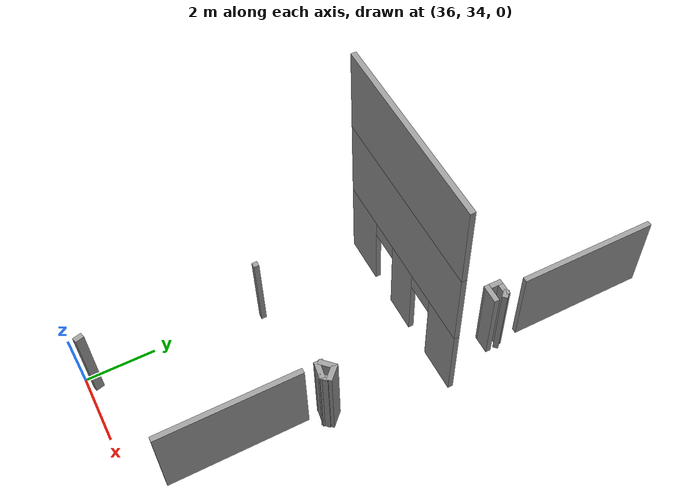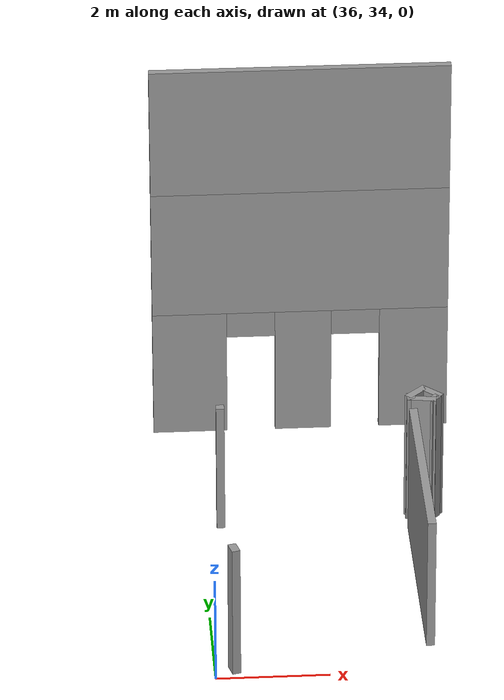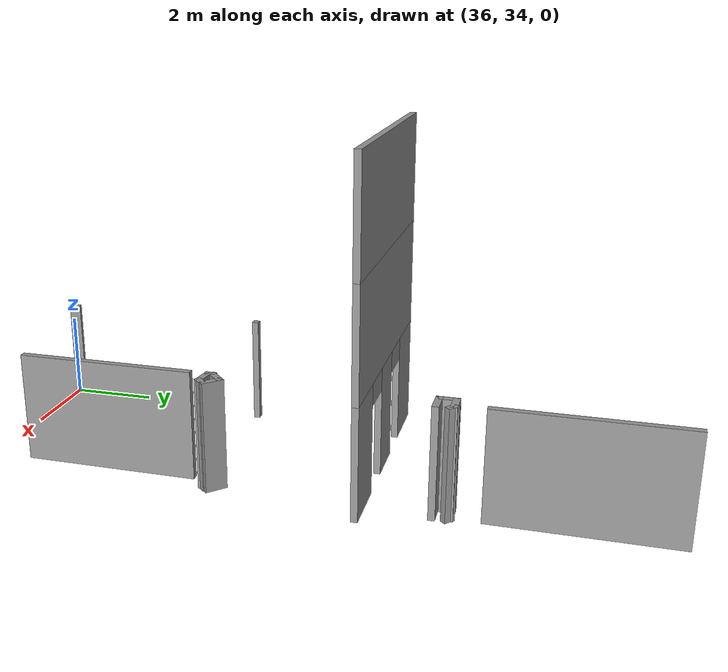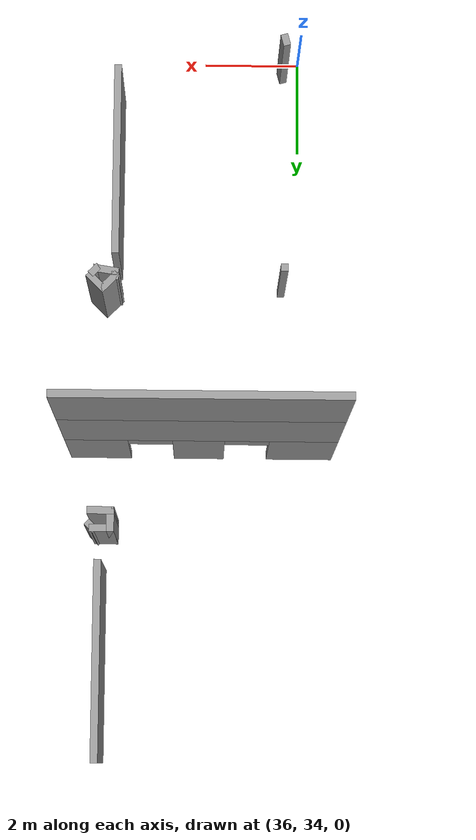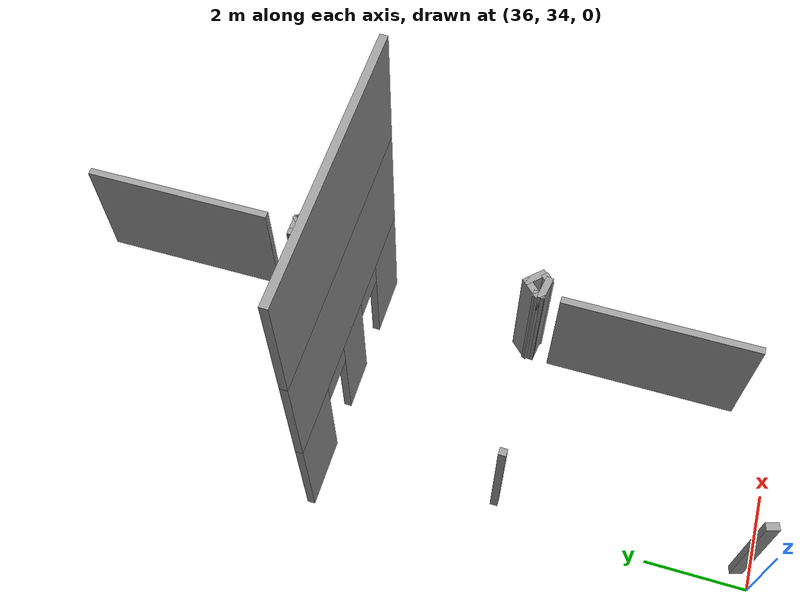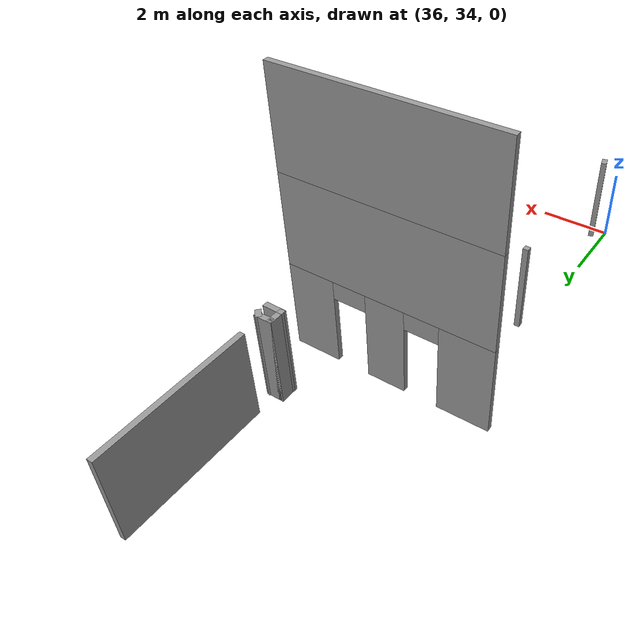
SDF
<sdf version="1.7">
 <model name="mapagazebo">
  <pose>-4.67869 9.01252 0 0 -0 0</pose>
  <link name="Wall_1242">
   <collision name="Wall_1242_Collision">
    <geometry><box><size>5.5 0.15 2.5</size></box></geometry>
    <pose>0 0 1.25 0 -0 0</pose>
   </collision>
   <visual name="Wall_1242_Visual">
    <pose>0 0 1.25 0 -0 0</pose>
    <geometry><box><size>5.5 0.15 2.5</size></box></geometry>
    <material>
     <script><uri>file://media/materials/scripts/gazebo.material</uri><name>Gazebo/Grey</name></script>
     <ambient>1 1 1 1</ambient>
    </material>
    <meta><layer>1</layer></meta>
   </visual>
   <pose>42.6999 33.627 2.5 0 -0 0</pose>
  </link>
  <link name="Wall_1866">
   <collision name="Wall_1866_Collision">
    <geometry><box><size>5.5 0.15 2.5</size></box></geometry>
    <pose>0 0 1.25 0 -0 0</pose>
   </collision>
   <visual name="Wall_1866_Visual">
    <pose>0 0 1.25 0 -0 0</pose>
    <geometry><box><size>5.5 0.15 2.5</size></box></geometry>
    <material>
     <script><uri>file://media/materials/scripts/gazebo.material</uri><name>Gazebo/Grey</name></script>
     <ambient>1 1 1 1</ambient>
    </material>
    <meta><layer>2</layer></meta>
   </visual>
   <pose>42.6999 33.627 5 0 -0 0</pose>
  </link>
  <link name="Wall_2079">
   <collision name="Wall_2079_Collision">
    <geometry><box><size>4 0.15 2.5</size></box></geometry>
    <pose>0 0 1.25 0 -0 0</pose>
   </collision>
   <visual name="Wall_2079_Visual">
    <pose>0 0 1.25 0 -0 0</pose>
    <geometry><box><size>4 0.15 2.5</size></box></geometry>
    <material>
     <script><uri>file://media/materials/scripts/gazebo.material</uri><name>Gazebo/Grey</name></script>
     <ambient>1 1 1 1</ambient>
    </material>
    <meta><layer>0</layer></meta>
   </visual>
   <pose>44.7478 38.096 0 0 -0 -1.5708</pose>
  </link>
  <link name="Wall_2106">
   <collision name="Wall_2106_Collision">
    <geometry><box><size>4 0.15 2.5</size></box></geometry>
    <pose>0 0 1.25 0 -0 0</pose>
   </collision>
   <visual name="Wall_2106_Visual">
    <pose>0 0 1.25 0 -0 0</pose>
    <geometry><box><size>4 0.15 2.5</size></box></geometry>
    <material>
     <script><uri>file://media/materials/scripts/gazebo.material</uri><name>Gazebo/Grey</name></script>
     <ambient>1 1 1 1</ambient>
    </material>
    <meta><layer>0</layer></meta>
   </visual>
   <pose>44.4975 27.8295 0 0 -0 -1.5708</pose>
  </link>
  <link name="Wall_2116">
   <collision name="Wall_2116_Collision">
    <geometry><box><size>0.15 0.15 2.5</size></box></geometry>
    <pose>0 0 1.25 0 -0 0</pose>
   </collision>
   <visual name="Wall_2116_Visual">
    <pose>0 0 1.25 0 -0 0</pose>
    <geometry><box><size>0.15 0.15 2.5</size></box></geometry>
    <material>
     <script><uri>file://media/materials/scripts/gazebo.material</uri><name>Gazebo/Grey</name></script>
     <ambient>1 1 1 1</ambient>
    </material>
    <meta><layer>0</layer></meta>
   </visual>
   <pose>41.0309 30.1044 0 0 -0 0</pose>
  </link>
  <link name="Wall_2120">
   <collision name="Wall_2120_Collision">
    <geometry><box><size>0.25 0.15 2.5</size></box></geometry>
    <pose>0 0 1.25 0 -0 0</pose>
   </collision>
   <visual name="Wall_2120_Visual">
    <pose>0 0 1.25 0 -0 0</pose>
    <geometry><box><size>0.25 0.15 2.5</size></box></geometry>
    <material>
     <script><uri>file://media/materials/scripts/gazebo.material</uri><name>Gazebo/Grey</name></script>
     <ambient>1 1 1 1</ambient>
    </material>
    <meta><layer>0</layer></meta>
   </visual>
   <pose>44.4914 30.2637 0 0 -0 1.5708</pose>
  </link>
  <link name="Wall_2121">
   <collision name="Wall_2121_Collision">
    <geometry><box><size>0.5 0.15 2.5</size></box></geometry>
    <pose>0 0 1.25 0 -0 0</pose>
   </collision>
   <visual name="Wall_2121_Visual">
    <pose>0 0 1.25 0 -0 0</pose>
    <geometry><box><size>0.5 0.15 2.5</size></box></geometry>
    <material>
     <script><uri>file://media/materials/scripts/gazebo.material</uri><name>Gazebo/Grey</name></script>
     <ambient>1 1 1 1</ambient>
    </material>
    <meta><layer>0</layer></meta>
   </visual>
   <pose>44.6151 30.4375 0 0 -0 0.785398</pose>
  </link>
  <link name="Wall_2122">
   <collision name="Wall_2122_Collision">
    <geometry><box><size>0.5 0.15 2.5</size></box></geometry>
    <pose>0 0 1.25 0 -0 0</pose>
   </collision>
   <visual name="Wall_2122_Visual">
    <pose>0 0 1.25 0 -0 0</pose>
    <geometry><box><size>0.5 0.15 2.5</size></box></geometry>
    <material>
     <script><uri>file://media/materials/scripts/gazebo.material</uri><name>Gazebo/Grey</name></script>
     <ambient>1 1 1 1</ambient>
    </material>
    <meta><layer>0</layer></meta>
   </visual>
   <pose>44.8626 30.4375 0 0 -0 -0.785398</pose>
  </link>
  <link name="Wall_2125">
   <collision name="Wall_2125_Collision">
    <geometry><box><size>0.25 0.15 2.5</size></box></geometry>
    <pose>0 0 1.25 0 -0 0</pose>
   </collision>
   <visual name="Wall_2125_Visual">
    <pose>0 0 1.25 0 -0 0</pose>
    <geometry><box><size>0.25 0.15 2.5</size></box></geometry>
    <material>
     <script><uri>file://media/materials/scripts/gazebo.material</uri><name>Gazebo/Grey</name></script>
     <ambient>1 1 1 1</ambient>
    </material>
    <meta><layer>0</layer></meta>
   </visual>
   <pose>44.901 30.1918 0 0 -0 -2.35619</pose>
  </link>
  <link name="Wall_2126">
   <collision name="Wall_2126_Collision">
    <geometry><box><size>0.528627 0.15 2.5</size></box></geometry>
    <pose>0 0 1.25 0 -0 0</pose>
   </collision>
   <visual name="Wall_2126_Visual">
    <pose>0 0 1.25 0 -0 0</pose>
    <geometry><box><size>0.528627 0.15 2.5</size></box></geometry>
    <material>
     <script><uri>file://media/materials/scripts/gazebo.material</uri><name>Gazebo/Grey</name></script>
     <ambient>1 1 1 1</ambient>
    </material>
    <meta><layer>0</layer></meta>
   </visual>
   <pose>44.6785 30.1851 0 0 -0 2.98964</pose>
  </link>
  <link name="Wall_2127">
   <collision name="Wall_2127_Collision">
    <geometry><box><size>0.15 0.15 2.5</size></box></geometry>
    <pose>0 0 1.25 0 -0 0</pose>
   </collision>
   <visual name="Wall_2127_Visual">
    <pose>0 0 1.25 0 -0 0</pose>
    <geometry><box><size>0.15 0.15 2.5</size></box></geometry>
    <material>
     <script><uri>file://media/materials/scripts/gazebo.material</uri><name>Gazebo/Grey</name></script>
     <ambient>1 1 1 1</ambient>
    </material>
    <meta><layer>0</layer></meta>
   </visual>
   <pose>44.4914 30.2137 0 0 -0 0</pose>
  </link>
  <link name="Wall_2140">
   <collision name="Wall_2140_Collision">
    <geometry><box><size>0.5 0.15 2.5</size></box></geometry>
    <pose>0 0 1.25 0 -0 0</pose>
   </collision>
   <visual name="Wall_2140_Visual">
    <pose>0 0 1.25 0 -0 0</pose>
    <geometry><box><size>0.5 0.15 2.5</size></box></geometry>
    <material>
     <script><uri>file://media/materials/scripts/gazebo.material</uri><name>Gazebo/Grey</name></script>
     <ambient>1 1 1 1</ambient>
    </material>
    <meta><layer>0</layer></meta>
   </visual>
   <pose>44.5043 35.2918 0 0 -0 1.5708</pose>
  </link>
  <link name="Wall_2141">
   <collision name="Wall_2141_Collision">
    <geometry><box><size>0.5 0.15 2.5</size></box></geometry>
    <pose>0 0 1.25 0 -0 0</pose>
   </collision>
   <visual name="Wall_2141_Visual">
    <pose>0 0 1.25 0 -0 0</pose>
    <geometry><box><size>0.5 0.15 2.5</size></box></geometry>
    <material>
     <script><uri>file://media/materials/scripts/gazebo.material</uri><name>Gazebo/Grey</name></script>
     <ambient>1 1 1 1</ambient>
    </material>
    <meta><layer>0</layer></meta>
   </visual>
   <pose>44.6793 35.4668 0 0 -0 0</pose>
  </link>
  <link name="Wall_2142">
   <collision name="Wall_2142_Collision">
    <geometry><box><size>0.25 0.15 2.5</size></box></geometry>
    <pose>0 0 1.25 0 -0 0</pose>
   </collision>
   <visual name="Wall_2142_Visual">
    <pose>0 0 1.25 0 -0 0</pose>
    <geometry><box><size>0.25 0.15 2.5</size></box></geometry>
    <material>
     <script><uri>file://media/materials/scripts/gazebo.material</uri><name>Gazebo/Grey</name></script>
     <ambient>1 1 1 1</ambient>
    </material>
    <meta><layer>0</layer></meta>
   </visual>
   <pose>44.8897 35.4314 0 0 -0 -0.785398</pose>
  </link>
  <link name="Wall_2146">
   <collision name="Wall_2146_Collision">
    <geometry><box><size>0.546612 0.15 2.5</size></box></geometry>
    <pose>0 0 1.25 0 -0 0</pose>
   </collision>
   <visual name="Wall_2146_Visual">
    <pose>0 0 1.25 0 -0 0</pose>
    <geometry><box><size>0.546612 0.15 2.5</size></box></geometry>
    <material>
     <script><uri>file://media/materials/scripts/gazebo.material</uri><name>Gazebo/Grey</name></script>
     <ambient>1 1 1 1</ambient>
    </material>
    <meta><layer>0</layer></meta>
   </visual>
   <pose>44.7026 35.1148 0 0 -0 3.13175</pose>
  </link>
  <link name="Wall_2147">
   <collision name="Wall_2147_Collision">
    <geometry><box><size>0.15 0.15 2.5</size></box></geometry>
    <pose>0 0 1.25 0 -0 0</pose>
   </collision>
   <visual name="Wall_2147_Visual">
    <pose>0 0 1.25 0 -0 0</pose>
    <geometry><box><size>0.15 0.15 2.5</size></box></geometry>
    <material>
     <script><uri>file://media/materials/scripts/gazebo.material</uri><name>Gazebo/Grey</name></script>
     <ambient>1 1 1 1</ambient>
    </material>
    <meta><layer>0</layer></meta>
   </visual>
   <pose>44.5043 35.1168 0 0 -0 0</pose>
  </link>
  <link name="Wall_2153">
   <collision name="Wall_2153_Collision">
    <geometry><box><size>0.25 0.15 2.5</size></box></geometry>
    <pose>0 0 1.25 0 -0 0</pose>
   </collision>
   <visual name="Wall_2153_Visual">
    <pose>0 0 1.25 0 -0 0</pose>
    <geometry><box><size>0.25 0.15 2.5</size></box></geometry>
    <material>
     <script><uri>file://media/materials/scripts/gazebo.material</uri><name>Gazebo/Grey</name></script>
     <ambient>1 1 1 1</ambient>
    </material>
    <meta><layer>0</layer></meta>
   </visual>
   <pose>41.024 25.2547 0 0 -0 1.8326</pose>
  </link>
  <link name="Wall_584">
   <pose>42.6999 33.627 0 0 -0 0</pose>
   <visual name="Wall_584_Visual_0">
    <pose>-2.06026 0 1.25 0 -0 0</pose>
    <geometry><box><size>1.37948 0.15 2.5</size></box></geometry>
    <material>
     <script><uri>file://media/materials/scripts/gazebo.material</uri><name>Gazebo/Grey</name></script>
     <ambient>1 1 1 1</ambient>
    </material>
    <meta><layer>0</layer></meta>
   </visual>
   <collision name="Wall_584_Collision_0">
    <geometry><box><size>1.37948 0.15 2.5</size></box></geometry>
    <pose>-2.06026 0 1.25 0 -0 0</pose>
   </collision>
   <visual name="Wall_584_Visual_1">
    <pose>0.052847 0 1.25 0 -0 0</pose>
    <geometry><box><size>1.04673 0.15 2.5</size></box></geometry>
    <material>
     <script><uri>file://media/materials/scripts/gazebo.material</uri><name>Gazebo/Grey</name></script>
     <ambient>1 1 1 1</ambient>
    </material>
    <meta><layer>0</layer></meta>
   </visual>
   <collision name="Wall_584_Collision_1">
    <geometry><box><size>1.04673 0.15 2.5</size></box></geometry>
    <pose>0.052847 0 1.25 0 -0 0</pose>
   </collision>
   <visual name="Wall_584_Visual_2">
    <pose>2.11311 0 1.25 0 -0 0</pose>
    <geometry><box><size>1.27378 0.15 2.5</size></box></geometry>
    <material>
     <script><uri>file://media/materials/scripts/gazebo.material</uri><name>Gazebo/Grey</name></script>
     <ambient>1 1 1 1</ambient>
    </material>
    <meta><layer>0</layer></meta>
   </visual>
   <collision name="Wall_584_Collision_2">
    <geometry><box><size>1.27378 0.15 2.5</size></box></geometry>
    <pose>2.11311 0 1.25 0 -0 0</pose>
   </collision>
   <visual name="Wall_584_Visual_3">
    <pose>-0.920521 0 2.25 0 -0 0</pose>
    <geometry><box><size>0.9 0.15 0.5</size></box></geometry>
    <material>
     <script><uri>file://media/materials/scripts/gazebo.material</uri><name>Gazebo/Grey</name></script>
     <ambient>1 1 1 1</ambient>
    </material>
    <meta><layer>0</layer></meta>
   </visual>
   <collision name="Wall_584_Collision_3">
    <geometry><box><size>0.9 0.15 0.5</size></box></geometry>
    <pose>-0.920521 0 2.25 0 -0 0</pose>
   </collision>
   <visual name="Wall_584_Visual_4">
    <pose>1.02622 0 2.25 0 -0 0</pose>
    <geometry><box><size>0.9 0.15 0.5</size></box></geometry>
    <material>
     <script><uri>file://media/materials/scripts/gazebo.material</uri><name>Gazebo/Grey</name></script>
     <ambient>1 1 1 1</ambient>
    </material>
    <meta><layer>0</layer></meta>
   </visual>
   <collision name="Wall_584_Collision_4">
    <geometry><box><size>0.9 0.15 0.5</size></box></geometry>
    <pose>1.02622 0 2.25 0 -0 0</pose>
   </collision>
  </link>
  <static>1</static>
 </model>
</sdf>
